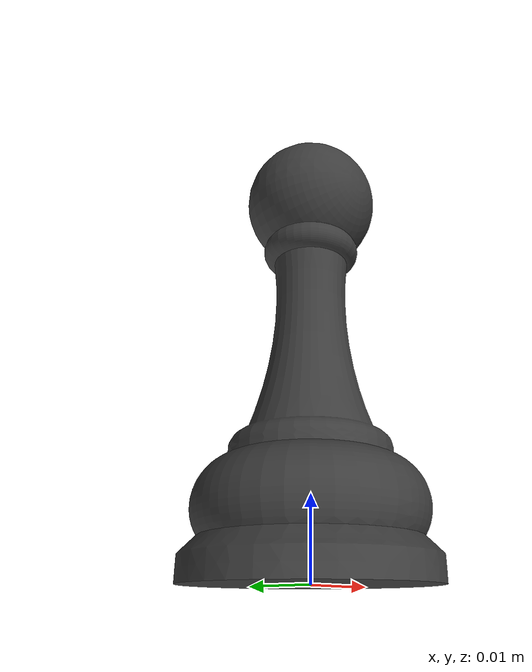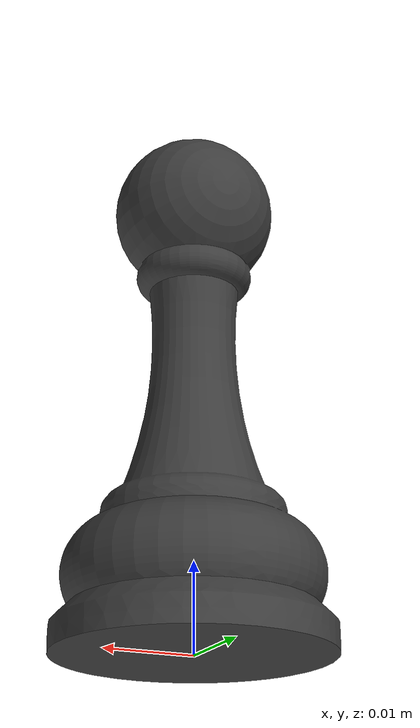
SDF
<?xml version='1.0'?>
<sdf version='1.7'>
  <model name='pawn'>
    <link name='link'>

      <inertial>
        <pose>0 0 0.01 0 -0 0</pose>
        <mass>0.5</mass>
        <inertia>
          <ixx>0.00950655</ixx>
          <ixy>0</ixy>
          <ixz>0</ixz>
          <iyy>0.00543452</iyy>
          <iyz>0</iyz>
          <izz>0.0114843</izz>
        </inertia>
      </inertial>

      <self_collide>0</self_collide>
      <enable_wind>0</enable_wind>
      <kinematic>0</kinematic>
      <pose>0 0 0 0 -0 0</pose>

      <visual name='visual'>
        <geometry>
          <mesh>
            <uri>model://pawn/meshes/pawn_b.dae</uri>
          </mesh>
        </geometry>
       <material name="blue">
        <color rgba= "0 0 1 1"/>
      </material>
      </visual>

      <collision name='collision'>
        <laser_retro>0</laser_retro>
        <max_contacts>10</max_contacts>
        <pose>0 0 0 0 -0 0</pose>
        <geometry>
          <mesh>
            <uri>model://pawn/meshes/pawn_b.dae</uri>
          </mesh>
        </geometry>

      </collision>
    </link>

    <static>0</static>

  </model>
</sdf>
